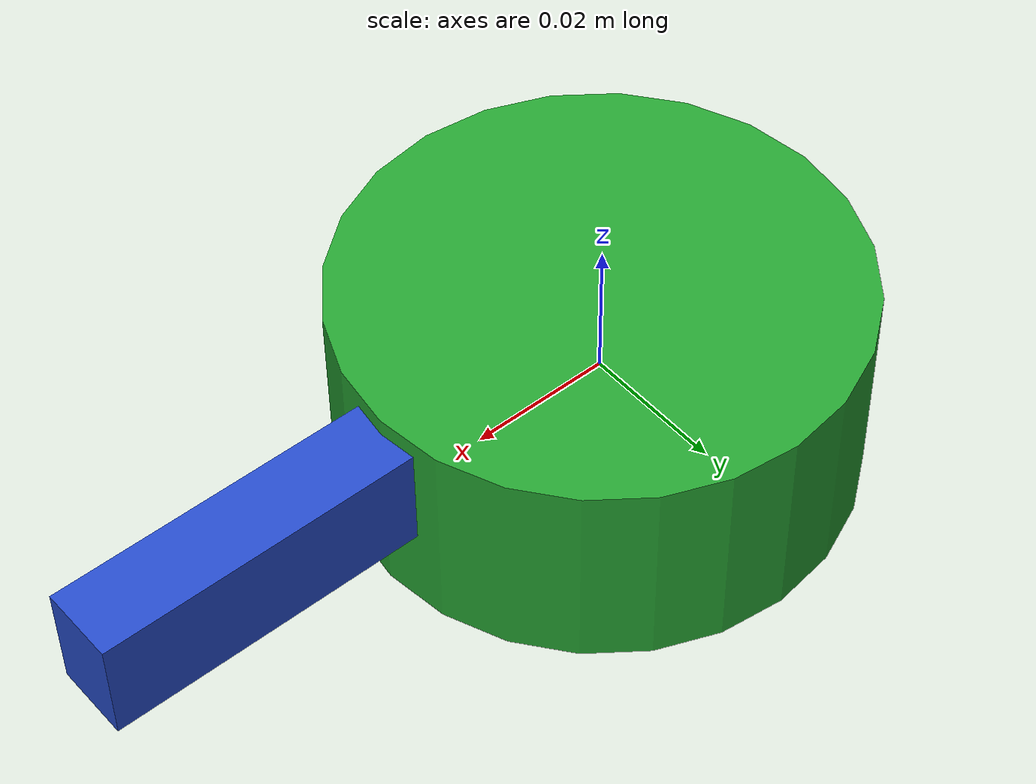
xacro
<?xml version="1.0" ?>
<robot name="cup" xmlns:xacro="http://ros.org/wiki/xacro">

  <xacro:include filename="$(find ur5_gripper_moveit_config)/env_urdf/common.xacro"/>

  <link name="base_link">
    <inertial>
      <origin xyz="0 0 0" rpy="0 0 0"/>
      <cylinder_inertial mass="0.3" radius="0.035" length="0.03"/>
    </inertial>
    <visual>
      <origin xyz="0 0 0" rpy="0 0 0"/>
      <geometry>
        <cylinder length="0.03" radius="0.035"/>
      </geometry>
    </visual>
    <collision>
      <origin xyz="0 0 0" rpy="0 0 0"/>
      <geometry>
        <cylinder length="0.03" radius="0.035"/>
      </geometry>
    </collision>
  </link>

  <joint name="handle_joint" type="fixed">
    <parent link="base_link"/>
    <child link="handle_link1"/>
    <origin xyz="0.0385 0 0.005" rpy="0 0 0"/>
  </joint>

  <link name="handle_link1">
    <inertial>
      <box_inertial mass="0.01" height="0.08" width="0.0106" depth="0.015"/>
    </inertial>
    <visual>
      <origin xyz="0 0 0" rpy="0 0 0"/>
      <geometry>
        <box size="0.08 0.0106 0.015"/>
      </geometry>
    </visual>
    <collision>
      <origin xyz="0 0 0" rpy="0 0 0"/>
      <geometry>
        <box size="0.08 0.0106 0.015"/>
      </geometry>
    </collision>
  </link>

  <gazebo reference="base_link">
    <material>Gazebo/Green</material>
  </gazebo>

  <gazebo reference="handle_link1">
    <material>Gazebo/Blue</material>
  </gazebo>

</robot>

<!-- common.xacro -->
<robot xmlns:xacro="http://ros.org/wiki/xacro">
  <property name="PI" value="3.141592"/>

  <xacro:macro name="cylinder_inertial" params="mass radius length">
	<mass value="${mass}"/>
	<inertia ixx="${((radius*radius)/4 + (length*length)/12)*mass}" ixy="0" ixz="0"
			 iyy="${((radius*radius)/4 + (length*length)/12)*mass}" iyz="0"
			 izz="${(mass*radius*radius)/2}" />
  </xacro:macro>

  <xacro:macro name="box_inertial" params="mass height width depth">
	<mass value="${mass}"/>
	<inertia ixx="${(mass*(width*width+depth*depth))/12}" ixy="0" ixz="0"
			 iyy="${(mass*(height*height+depth*depth))/12}" iyz="0"
			 izz="${(mass*(height*height+width*width))/12}" />
  </xacro:macro>
</robot>
